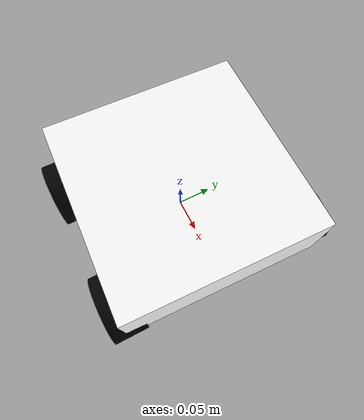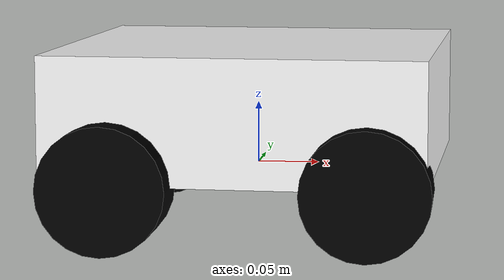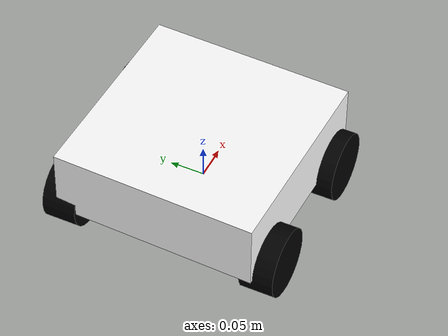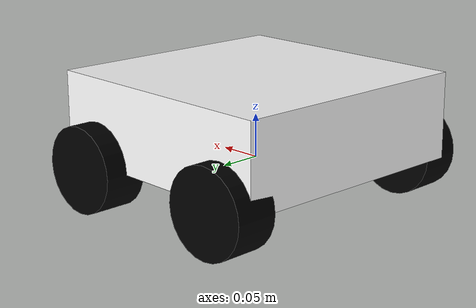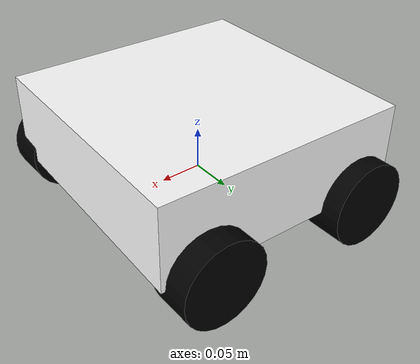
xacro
<?xml version="1.0"?>

<robot xmlns:xacro="http://www.ros.org/wiki/xacro"
 	xmlns:sensor="http://playerstage.sourceforge.net/gazebo/xmlschema/#sensor"
    	xmlns:controller="http://playerstage.sourceforge.net/gazebo/xmlschema/#controller"
    	xmlns:interface="http://playerstage.sourceforge.net/gazebo/xmlschema/#interface"
	name="robot1_xacro">
        <xacro:include filename="$(find wheelbot)/urdf/version1.gazebo" />

	<xacro:property name="length_wheel" value="0.05" />
	<xacro:property name="radius_wheel" value="0.05" />
	<xacro:macro name="default_inertial" params="mass">
               <inertial>
                       <mass value="${mass}" />
                       <inertia ixx="0.1" ixy="0.0" ixz="0.0"
                                iyy="0.1" iyz="0.0"
                                izz="0.1" />
               </inertial>
	</xacro:macro>

	<link name="base_footprint">
   		<visual>
			<geometry>
      				<box size="0.001 0.001 0.001"/>
     			</geometry>
			<origin rpy="0 0 0" xyz="0 0 0"/>
   		</visual>
		<xacro:default_inertial mass="0.01"/>
 	</link>

	<gazebo reference="base_footprint">
		<material>Gazebo/Green</material>
		<turnGravityOff>false</turnGravityOff>
	</gazebo>

	<joint name="base_footprint_joint" type="fixed">
		<origin xyz="0 0 0" />
		<parent link="base_footprint" />
		<child link="base_link" />
	</joint>

	<link name="base_link">
   		<visual>
			<geometry>
      				<box size="0.3 0.3 0.1"/>
     			</geometry>
			<origin rpy="0 0 1.54" xyz="0 0 0.05"/>
			<material name="white">
				<color rgba="1 1 1 1"/>
			</material>
   		</visual>
		<collision>
			<geometry>
       				<box size="0.3 0.3 0.1"/>
			</geometry>
		</collision>
		<xacro:default_inertial mass="100"/>
 	</link>

 	<link name="wheel_1">
   		<visual>
     			<geometry>
       				<cylinder length="${length_wheel}" radius="${radius_wheel}"/>
     			</geometry>
			<origin rpy="0 0 0" xyz="0 0 0"/>
   			<material name="black">
				<color rgba="0 0 0 1"/>
			</material>
		</visual>
		<collision>
			<geometry>
       				<cylinder length="${length_wheel}" radius="${radius_wheel}"/>
			</geometry>
		</collision>
		<xacro:default_inertial mass="10"/>
 	</link>

 	<link name="wheel_2">
   		<visual>
     			<geometry>
       				<cylinder length="${length_wheel}" radius="${radius_wheel}"/>
     			</geometry>
			<origin rpy="0 0 0" xyz="0 0 0"/>
   			<material name="black"/>
   		</visual>
		<collision>
			<geometry>
       				<cylinder length="${length_wheel}" radius="${radius_wheel}"/>
			</geometry>
		</collision>
		<xacro:default_inertial mass="10"/>

 	</link>

 	<link name="wheel_3">
   		<visual>
     			<geometry>
       				<cylinder length="${length_wheel}" radius="${radius_wheel}"/>
     			</geometry>

			<origin rpy="0 0 0" xyz="0 0 0"/>
   			<material name="black"/>
   		</visual>
		<collision>
			<geometry>
       				<cylinder length="${length_wheel}" radius="${radius_wheel}"/>
			</geometry>
		</collision>
		<xacro:default_inertial mass="10"/>
 	</link>

 	<link name="wheel_4">
   		<visual>
     			<geometry>
       				<cylinder length="${length_wheel}" radius="${radius_wheel}"/>
     			</geometry>
			<origin rpy="0 0 0" xyz="0 0 0" />
   			<material name="black"/>
   		</visual>
		<collision>
			<geometry>
       				<cylinder length="${length_wheel}" radius="${radius_wheel}"/>
			</geometry>
		</collision>
		<xacro:default_inertial mass="10"/>

 	</link>

 <joint name="base_to_wheel1" type="continuous">
   <parent link="base_link"/>
   <child link="wheel_1"/>
   <origin rpy="1.5707 0 0" xyz="0.1 0.15 0"/>
   <axis xyz="0 0 1" />
   <limit effort="1000" velocity="1000" />
   <joint_properties damping="1.0" friction="1.0"/>

 </joint>

 <joint name="base_to_wheel2" type="continuous">
   <axis xyz="0 0 1" />
   <anchor xyz="0 0 0" />
   <limit effort="1000" velocity="1000" />
   <parent link="base_link"/>
   <child link="wheel_2"/>
   <joint_properties damping="1.0" friction="1.0"/>
   <origin rpy="1.5707 0 0" xyz="-0.1 0.15 0"/>
</joint>

 <joint name="base_to_wheel3" type="continuous">
   <parent link="base_link"/>
   <limit effort="1000" velocity="1000" />
   <axis xyz="0 0 1" />
   <joint_properties damping="1.0" friction="1.0"/>
   <child link="wheel_3"/>
   <origin rpy="1.5707 0 0" xyz="0.1 -0.15 0"/>
 </joint>

 <joint name="base_to_wheel4" type="continuous">
   <parent link="base_link"/>
   <limit effort="1000" velocity="1000" />
   <axis xyz="0 0 1" />
   <joint_properties damping="1.0" friction="1.0"/>
   <child link="wheel_4"/>
   <origin rpy="1.5707 0 0" xyz="-0.1 -0.15 0"/>
 </joint>

 <gazebo reference="base_link">
        <material>Gazebo/Yellow</material>
 </gazebo>

 <gazebo reference="wheel_1">
		<mu1>1.0</mu1>
		<mu2>1.0</mu2>
		<kp>1000000.0</kp>
		<kd>100.0</kd>
        	<material>Gazebo/Black</material>
 </gazebo>

 <gazebo reference="wheel_2">
		<mu1>1.0</mu1>
		<mu2>1.0</mu2>
		<kp>1000000.0</kp>
		<kd>100.0</kd>
       	 	<material>Gazebo/Black</material>
 </gazebo>

 <gazebo reference="wheel_3">
		<mu1>1.0</mu1>
		<mu2>1.0</mu2>
		<kp>1000000.0</kp>
		<kd>100.0</kd>
        	<material>Gazebo/Black</material>
 </gazebo>

 <gazebo reference="wheel_4">
   		<mu1>1.0</mu1>
		<mu2>1.0</mu2>
		<kp>1000000.0</kp>
		<kd>100.0</kd>
		<material>Gazebo/Black</material>
 </gazebo>

</robot>
